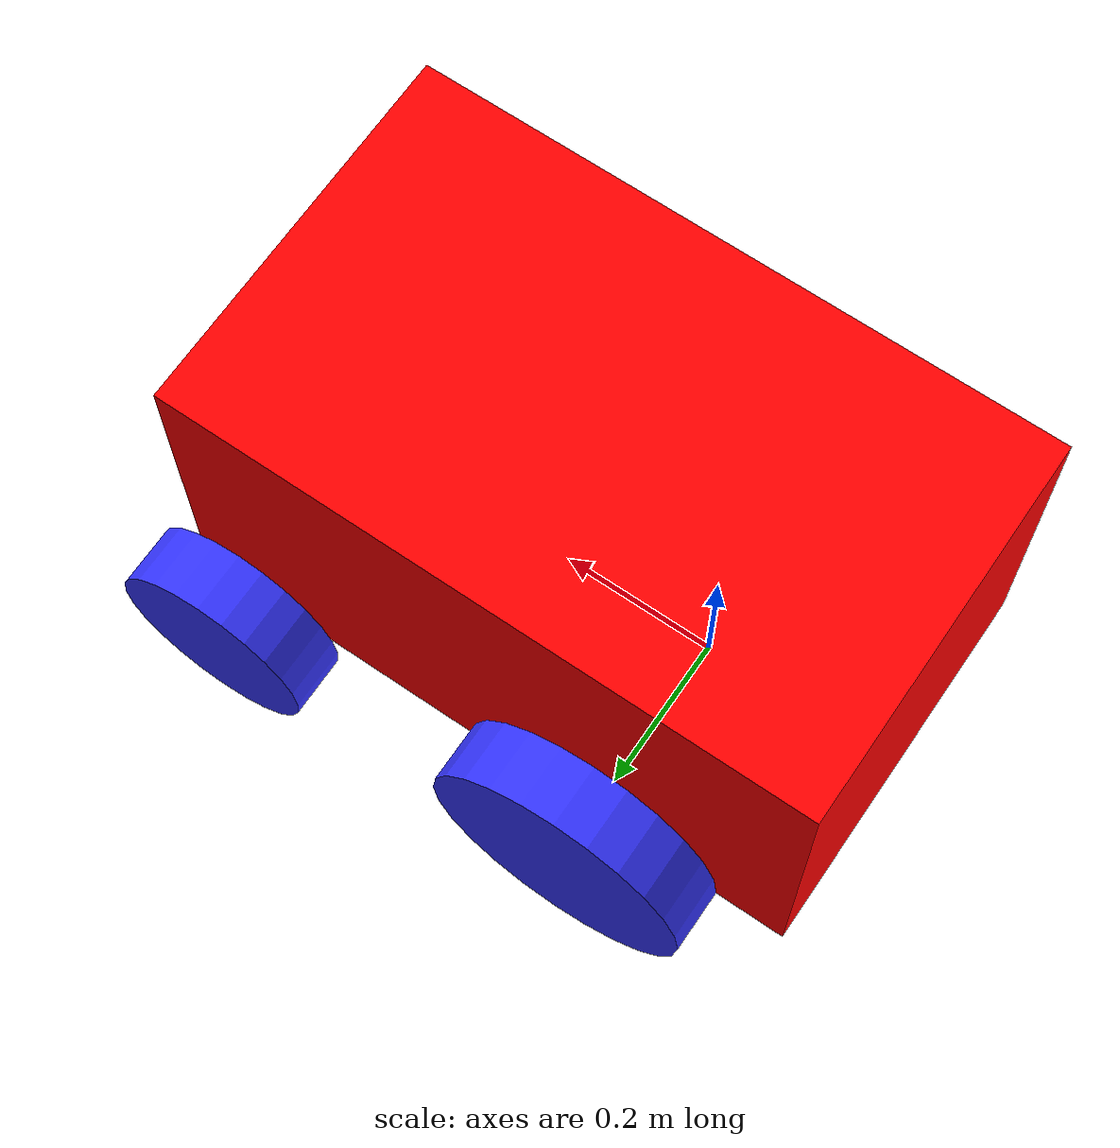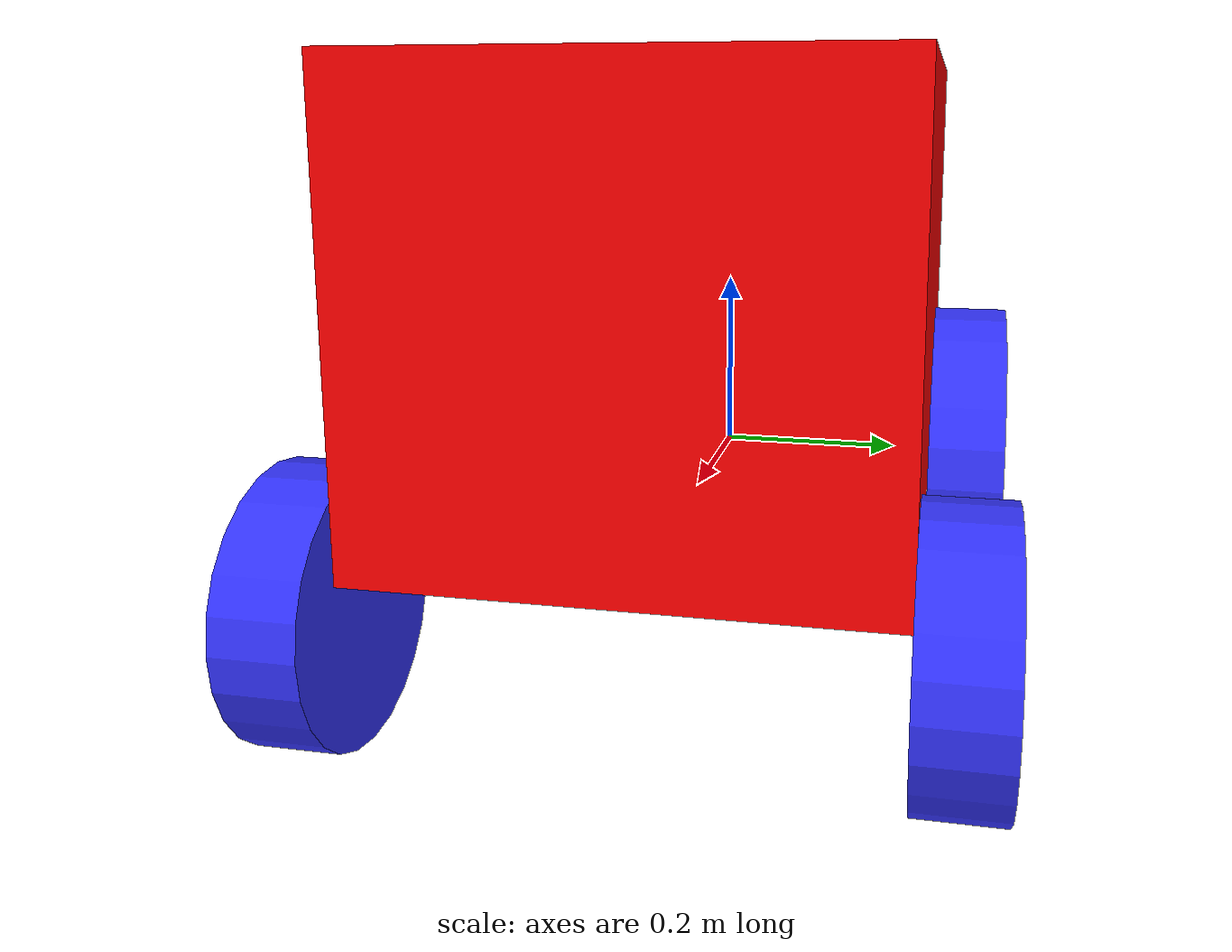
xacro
<?xml version="1.0"?>
<robot xmlns:xacro="http://www.ros.org/wiki/xacro" >

<xacro:include filename="inertial_macros.xacro" />
    <material name="white">
        <color rgba="1 1 1 1"/>
    </material>

    <material name="orange">
        <color rgba="1 0.3 0.1 1"/>
    </material>

    <material name="blue">
        <color rgba="0.2 0.2 1 1"/>
    </material>

    <material name="black">
        <color rgba="0 0 0 1"/>
    </material>

    <material name="red">
        <color rgba="1 0 0 1"/>
    </material>

    <!--  BASE LINK  -->

    <link name="base_link">

    </link>

    <!--  CHASSIS LINK  -->

    <joint name="chassis_joint" type="fixed">
        <parent link="base_link"/>
        <child link="chassis"/>
        <origin xyz="-0.26 0 0"/>
    </joint>

    <link name="chassis">
        <visual>
            <origin xyz="0.41 0 0.225" rpy="0 0 0"/>
            <geometry>
                <box size="0.82 0.49 0.45"/>
            </geometry>
            <material name="red"/>
        </visual>

        <collision>
            <origin xyz="0.41 0 0.225" rpy="0 0 0"/>
            <geometry>
                <box size="0.82 0.49 0.45"/>
            </geometry>
        </collision>

        <xacro:inertial_box mass="35" x="0.82" y="0.49" z="0.45">
            <origin xyz="0.41 0 0.225" rpy="0 0 0"/>
        </xacro:inertial_box>

    </link>

    <gazebo reference="chassis">
        <material>Gazebo/Red</material>
    </gazebo>

    <!--  LEFT WHEEL LINK  -->

    <joint name="left_wheel_joint" type="continuous">
        <parent link="base_link"/>
        <child link="left_wheel"/>
        <origin xyz="0 0.285 0" rpy="-${pi/2} 0 0"/>
        <axis xyz="0 0 2"/>
    </joint>

    <link name="left_wheel">
        <visual>
            <geometry>
                <cylinder length="0.08" radius="0.17" />/>
            </geometry>
            <material name="blue"/>
        </visual>

        <collision>
            <geometry>
                <sphere radius="0.17" />/>
            </geometry>
        </collision>

        <xacro:inertial_cylinder mass="1" length="0.08" radius="0.17">
            <origin xyz="0 0 0" rpy="0 0 0"/>
        </xacro:inertial_cylinder>

    </link>

    <gazebo reference="left_wheel">
        <material>Gazebo/Grey</material>
    </gazebo>

    <!-- RIGHT WHEEL -->

    <joint name="right_wheel_joint" type="continuous">
        <parent link="base_link"/>
        <child link="right_wheel"/>
        <origin xyz="0 -0.285 0" rpy="${pi/2} 0 0"/>
        <axis xyz="0 0 -2"/>
    </joint>

    <link name="right_wheel">
        <visual>
            <geometry>
                <cylinder length="0.08" radius="0.17" />/>
            </geometry>
            <material name="blue"/>
        </visual>

        <collision>
            <geometry>
                <sphere radius="0.17" />/>
            </geometry>
        </collision>

        <xacro:inertial_cylinder mass="1" length="0.08" radius="0.17">
            <origin xyz="0 0 0" rpy="0 0 0"/>
        </xacro:inertial_cylinder>

    </link>

    <gazebo reference="right_wheel">
        <material>Gazebo/Grey</material>
    </gazebo>

    <!--  LEFT FRONT WHEEL LINK  -->

    <joint name="left_front_wheel_joint" type="fixed">
        <parent link="base_link"/>
        <child link="left_front_wheel"/>
        <origin xyz="0.5 0.285 -0.04" rpy="-${pi/2} 0 0"/>
        <axis xyz="0 0 2"/>
    </joint>

    <link name="left_front_wheel">
        <visual>
            <geometry>
                <cylinder length="0.08" radius="0.13" />/>
            </geometry>
            <material name="blue"/>
        </visual>

        <collision>
            <geometry>
                <sphere radius="0.13" />
            </geometry>
        </collision>

        <xacro:inertial_cylinder mass="1" length="0.08" radius="0.13">
            <origin xyz="0 0 0" rpy="0 0 0"/>
        </xacro:inertial_cylinder>

    </link>

    <gazebo reference="left_front_wheel">
        <material>Gazebo/Grey</material>
        <mu1 value="0.001"/>
        <mu2 value="0.001"/>
    </gazebo>

    <!--  RIGHT FRONT WHEEL LINK  -->

    <joint name="right_front_wheel_joint" type="fixed">
        <parent link="base_link"/>
        <child link="right_front_wheel"/>
        <origin xyz="0.5 -0.285 -0.04" rpy="${pi/2} 0 0"/>
        <axis xyz="0 0 -2"/>
    </joint>

    <link name="right_front_wheel">
        <visual>
            <geometry>
                <cylinder length="0.08" radius="0.13" />/>
            </geometry>
            <material name="blue"/>
        </visual>

        <collision>
            <geometry>
                <sphere radius="0.13" />
            </geometry>
        </collision>

        <xacro:inertial_cylinder mass="1" length="0.08" radius="0.13">
            <origin xyz="0 0 0" rpy="0 0 0"/>
        </xacro:inertial_cylinder>

    </link>

    <gazebo reference="right_front_wheel">
        <material>Gazebo/Grey</material>
        <mu1 value="0.001"/>
        <mu2 value="0.001"/>
    </gazebo>

</robot>
